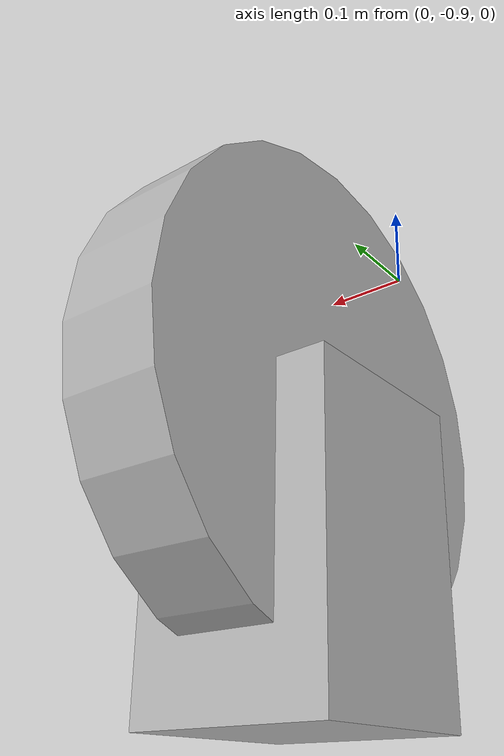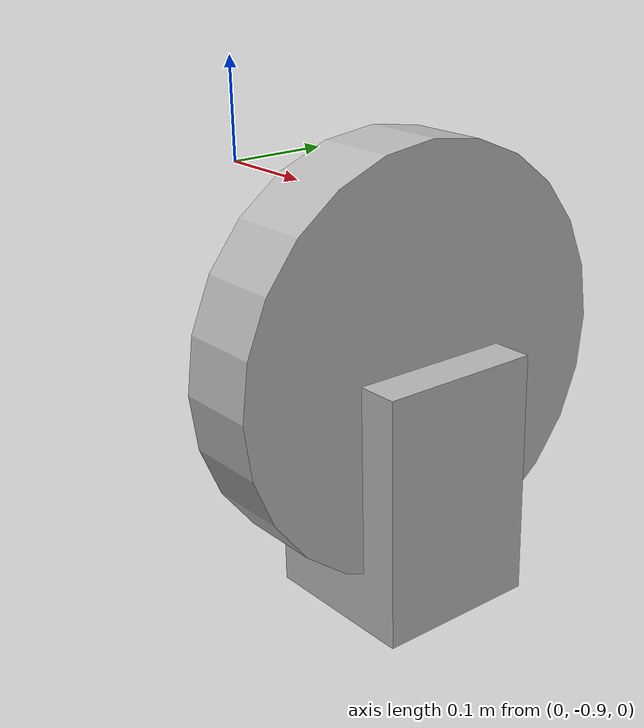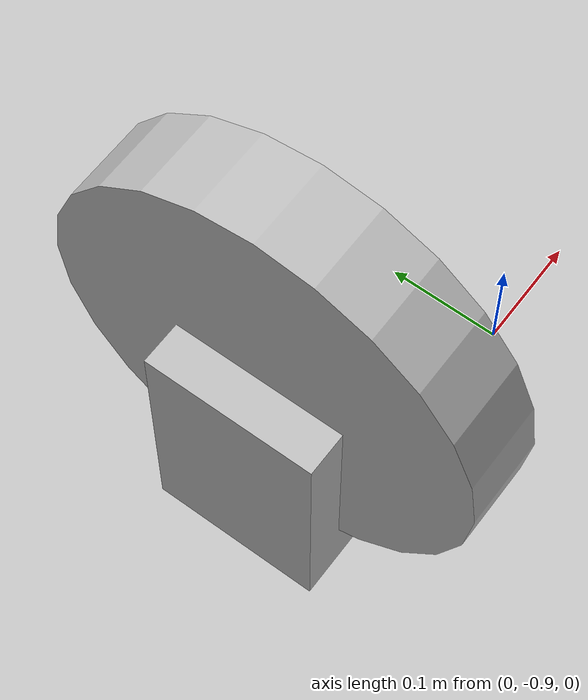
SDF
<?xml version='1.0'?>
<sdf version='1.4'>
  <model name="chimera_wheel">
    <static>false</static>
    <pose>0 0 0 3.14 0 0</pose>
    <link name = "bow-coupler">
      <pose>0 0.6886752954 0.4 0 0 1.570796327</pose>
      <inertial>
          <inertia>
              <ixx>0.01</ixx>
              <ixy>0</ixy>
              <ixz>0</ixz>
              <iyy>0.01</iyy>
              <iyz>0</iyz>
              <izz>0.01</izz>
          </inertia>
          <mass>0.1</mass>
      </inertial>
      <collision name = "coupler-coll">
        <geometry>
          <box>
            <size>0.2 0.2 0.3</size>
          </box>
        </geometry>
      </collision>
      <visual name = "coupler-vis">
        <geometry>
          <box>
            <size>0.2 0.2 0.3</size>
          </box>
        </geometry>
      </visual>
    </link>
    <link name = "bow-wheel">
      <pose>0 0.6886752954 0.25 1.570796327 0 1.570796327</pose>
      <inertial>
          <inertia>
              <ixx>0.01</ixx>
              <ixy>0</ixy>
              <ixz>0</ixz>
              <iyy>0.01</iyy>
              <iyz>0</iyz>
              <izz>0.01</izz>
          </inertia>
          <mass>0.3</mass>
      </inertial>
      <collision name = "wheel-coll">
        <geometry>
          <cylinder>
            <radius>0.25</radius>
            <length>0.1</length>
          </cylinder>
        </geometry>
      </collision>
      <visual name = "wheel-vis">
        <geometry>
          <cylinder>
            <radius>0.25</radius>
            <length>0.1</length>
          </cylinder>
        </geometry>
      </visual>
    </link>
    <joint name = "bow-coupler_wheel" type="revolute">
      <pose>0 0 0 0 0 0</pose>
      <child>bow-wheel</child>
      <parent>bow-coupler</parent>
      <axis>
        <xyz>1 0 0</xyz>
      </axis>
    </joint>
  </model>
</sdf>
